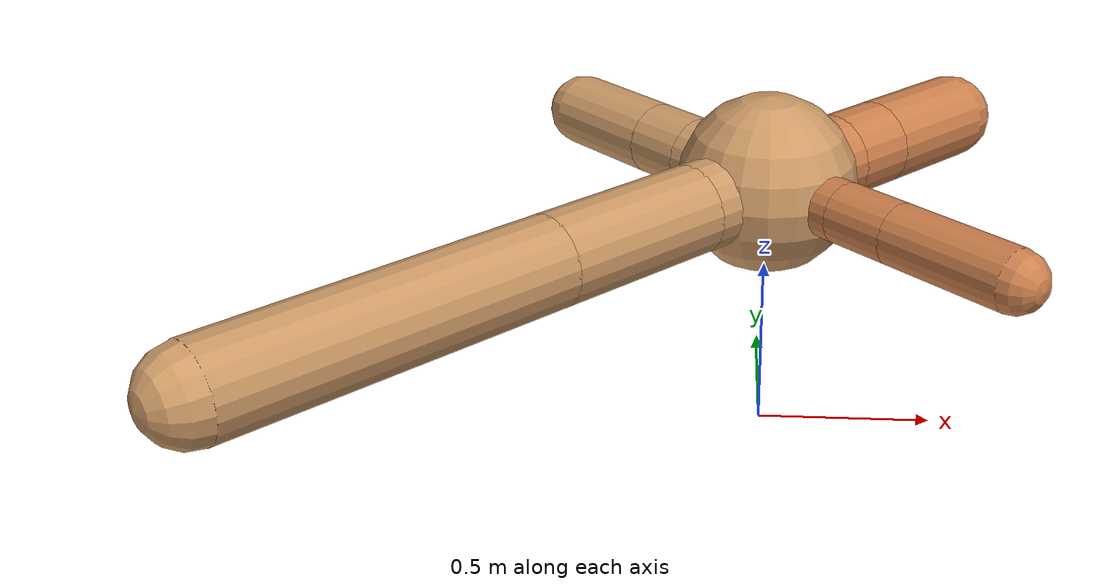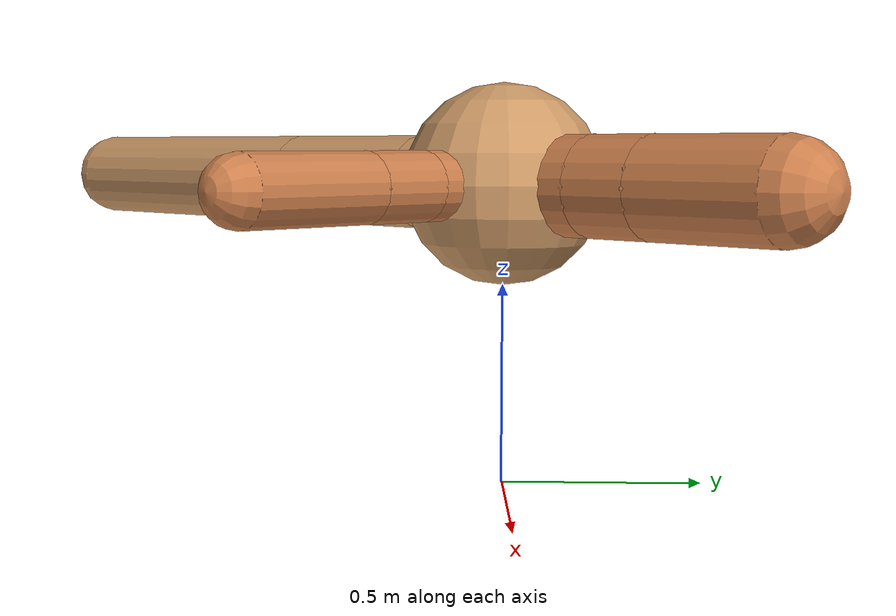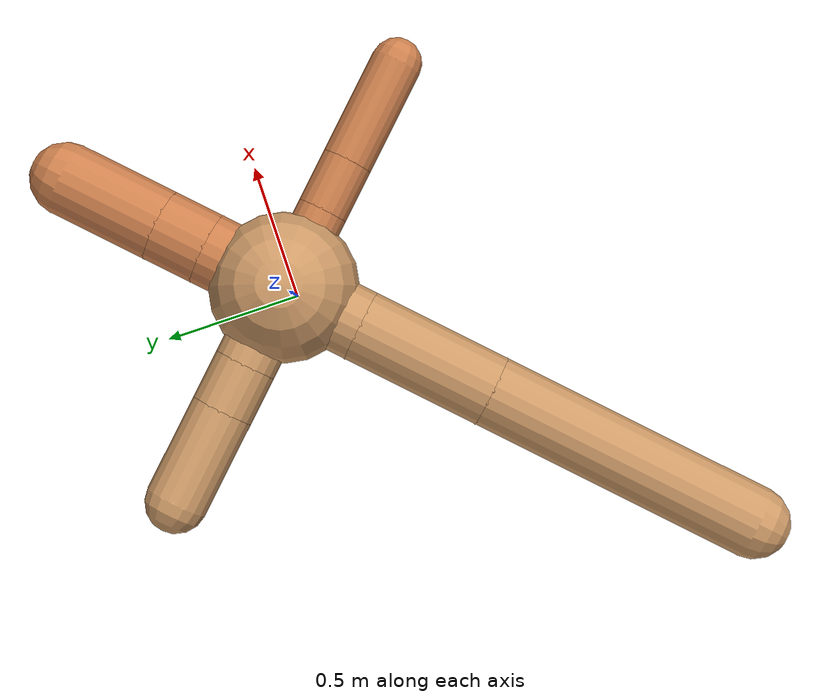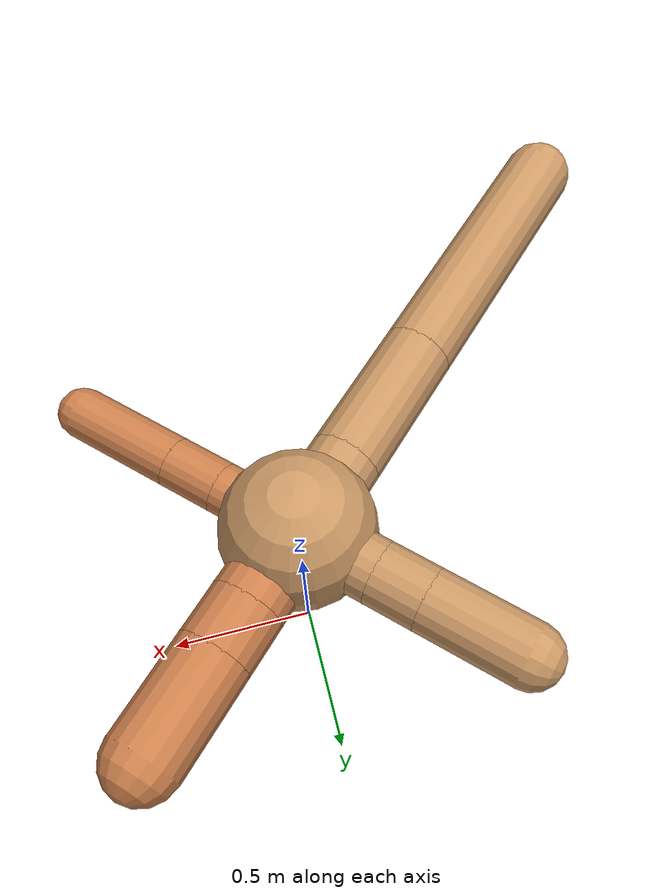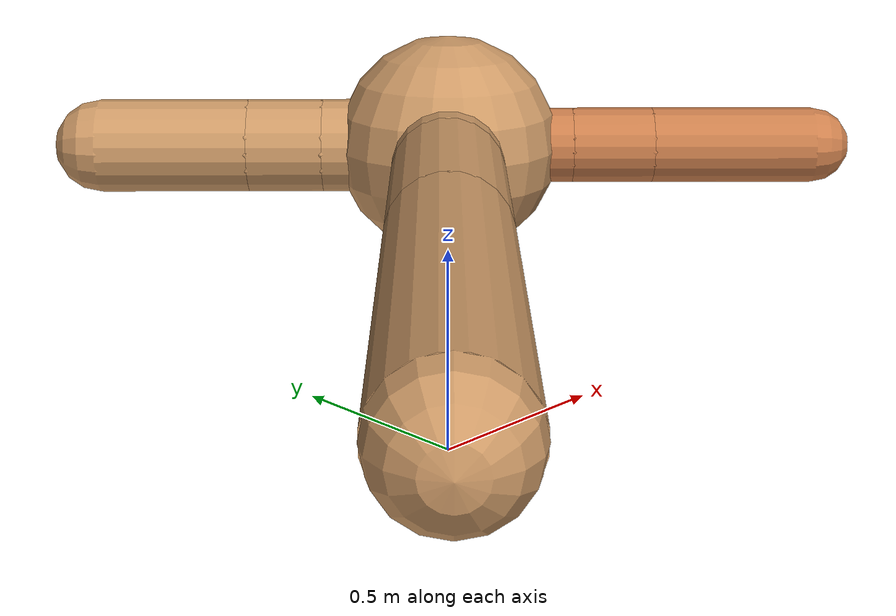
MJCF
<?xml version="1.0" ?>
<mujoco model="ant">

	<compiler angle="degree" coordinate="local" inertiafromgeom="true"/>

	<option integrator="RK4" timestep="0.01"/>

	<custom>

		<numeric data="0.0 0.0 0.55 1.0 0.0 0.0 0.0 0.0 1.0 0.0 -1.0 0.0 -1.0 0.0 1.0" name="init_qpos"/>

	</custom>

	<default>

		<joint armature="1" damping="1" limited="true"/>

		<geom conaffinity="0" condim="3" density="5.0" friction="1.5 0.1 0.1" margin="0.01" rgba="0.8 0.6 0.4 1"/>

	</default>

	<worldbody>

		<body name="torso" pos="0 0 0.75">

			<geom name="torso_geom" pos="0 0 0" size="0.2502546722353462" type="sphere"/>

			<!--joint armature="0" damping="0" limited="false" margin="0.01" name="root" pos="0 0 0" type="free"/-->

			<body name="front_left_leg" pos="0 0 0">

				<geom fromto="0 0 0 0.2 0.2 0" name="aux_1_geom" size="0.1233065264611998" type="capsule" rgba=".8 .5 .3 1"/>

				<body name="aux_1" pos="0.2 0.2 0">

					<joint axis="0 0 1" name="hip_1" pos="0.0 0.0 0.0" range="-40 40" type="hinge"/>

					<geom fromto="0 0 0 0.1217668847291885 0.1217668847291885 0" name="left_leg_geom" size="0.1233065264611998" type="capsule" rgba=".8 .5 .3 1"/>

					<body pos="0.1217668847291885 0.1217668847291885 0" name="front_left_foot">

						<joint axis="-1 1 0" name="ankle_1" pos="0.0 0.0 0.0" range="30 100" type="hinge"/>

						<geom fromto="0 0 0 0.243533769458377 0.243533769458377 0" name="left_ankle_geom" size="0.1233065264611998" type="capsule" rgba=".8 .5 .3 1"/>

					</body>

				</body>

			</body>

			<body name="front_right_leg" pos="0 0 0">

				<geom fromto="0 0 0 -0.2 0.2 0" name="aux_2_geom" size="0.1051309946662639" type="capsule"/>

				<body name="aux_2" pos="-0.2 0.2 0">

					<joint axis="0 0 1" name="hip_2" pos="0.0 0.0 0.0" range="-40 40" type="hinge"/>

					<geom fromto="0 0 0 -0.11895054650504405 0.11895054650504405 0" name="right_leg_geom" size="0.1051309946662639" type="capsule"/>

					<body pos="-0.11895054650504405 0.11895054650504405 0" name="front_right_foot">

						<joint axis="1 1 0" name="ankle_2" pos="0.0 0.0 0.0" range="-100 -30" type="hinge"/>

						<geom fromto="0 0 0 -0.2379010930100881 0.2379010930100881 0" name="right_ankle_geom" size="0.1051309946662639" type="capsule"/>

					</body>

				</body>

			</body>

			<body name="left_back_leg" pos="0 0 0">

				<geom fromto="0 0 0 -0.2 -0.2 0" name="aux_3_geom" size="0.12202495020716989" type="capsule"/>

				<body name="aux_3" pos="-0.2 -0.2 0">

					<joint axis="0 0 1" name="hip_3" pos="0.0 0.0 0.0" range="-40 40" type="hinge"/>

					<geom fromto="0 0 0 -0.3395967648746841 -0.3395967648746841 0" name="back_leg_geom" size="0.12202495020716989" type="capsule"/>

					<body pos="-0.3395967648746841 -0.3395967648746841 0" name="left_back_foot">

						<joint axis="-1 1 0" name="ankle_3" pos="0.0 0.0 0.0" range="-100 -30" type="hinge"/>

						<geom fromto="0 0 0 -0.6791935297493682 -0.6791935297493682 0" name="third_ankle_geom" size="0.12202495020716989" type="capsule"/>

					</body>

				</body>

			</body>

			<body name="right_back_leg" pos="0 0 0">

				<geom fromto="0 0 0 0.2 -0.2 0" name="aux_4_geom" size="0.08480827557891633" type="capsule" rgba=".8 .5 .3 1"/>

				<body name="aux_4" pos="0.2 -0.2 0">

					<joint axis="0 0 1" name="hip_4" pos="0.0 0.0 0.0" range="-40 40" type="hinge"/>

					<geom fromto="0 0 0 0.12862378841570662 -0.12862378841570662 0" name="rightback_leg_geom" size="0.08480827557891633" type="capsule" rgba=".8 .5 .3 1"/>

					<body pos="0.12862378841570662 -0.12862378841570662 0" name="right_back_foot">

						<joint axis="1 1 0" name="ankle_4" pos="0.0 0.0 0.0" range="30 100" type="hinge"/>

						<geom fromto="0 0 0 0.25724757683141325 -0.25724757683141325 0" name="fourth_ankle_geom" size="0.08480827557891633" type="capsule" rgba=".8 .5 .3 1"/>

					</body>

				</body>

			</body>

		</body>

	</worldbody>

	<actuator>

		<motor ctrllimited="true" ctrlrange="-1.0 1.0" joint="hip_4" gear="150"/>

		<motor ctrllimited="true" ctrlrange="-1.0 1.0" joint="ankle_4" gear="150"/>

		<motor ctrllimited="true" ctrlrange="-1.0 1.0" joint="hip_1" gear="150"/>

		<motor ctrllimited="true" ctrlrange="-1.0 1.0" joint="ankle_1" gear="150"/>

		<motor ctrllimited="true" ctrlrange="-1.0 1.0" joint="hip_2" gear="150"/>

		<motor ctrllimited="true" ctrlrange="-1.0 1.0" joint="ankle_2" gear="150"/>

		<motor ctrllimited="true" ctrlrange="-1.0 1.0" joint="hip_3" gear="150"/>

		<motor ctrllimited="true" ctrlrange="-1.0 1.0" joint="ankle_3" gear="150"/>

	</actuator>

</mujoco>
